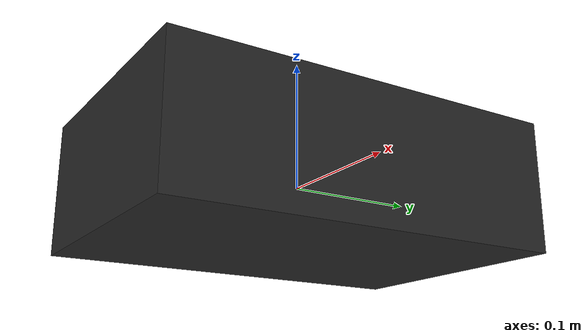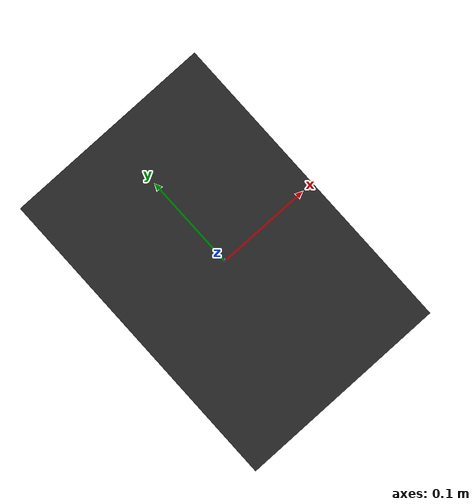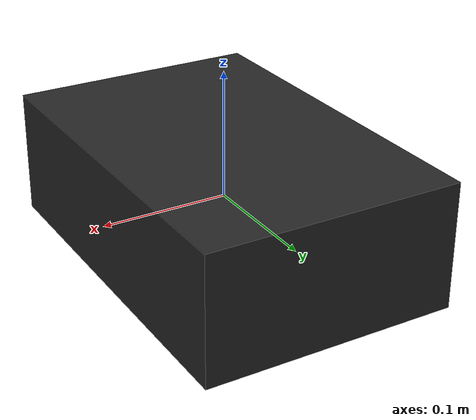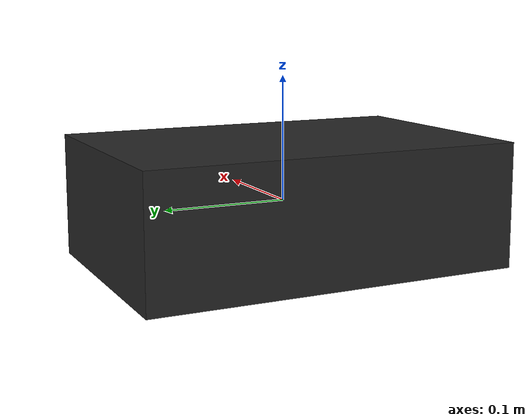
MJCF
<mujoco model="bridge_platform">
  <asset>
    <texture name="tex_platform" type="2d" builtin="checker" rgb1="0.1 0.1 0.1" rgb2="0.2 0.2 0.2" width="512" height="512"/>
    <material name="mat_platform" texture="tex_platform" shininess="0.1" specular="0.1" texrepeat="2 2"/>
  </asset>
  <worldbody>
    <body>
      <body name="object">
        <geom name="platform_geom" type="box" size="0.1 0.15 0.05" material="mat_platform"
              density="5000" friction="1.0 0.005 0.0001" solref="0.001 1" solimp="0.95 0.99 0.001"
              condim="4" group="0"/>
        <geom name="platform_vis" type="box" size="0.1 0.15 0.05" material="mat_platform"
              contype="0" conaffinity="0" group="1"/>

        <site name="top_site" pos="0 0 0.05" size="0.002" rgba="0 0 0 0"/>
        <site name="bottom_site" pos="0 0 -0.05" size="0.002" rgba="0 0 0 0"/>
      </body>
    </body>
  </worldbody>
</mujoco>
